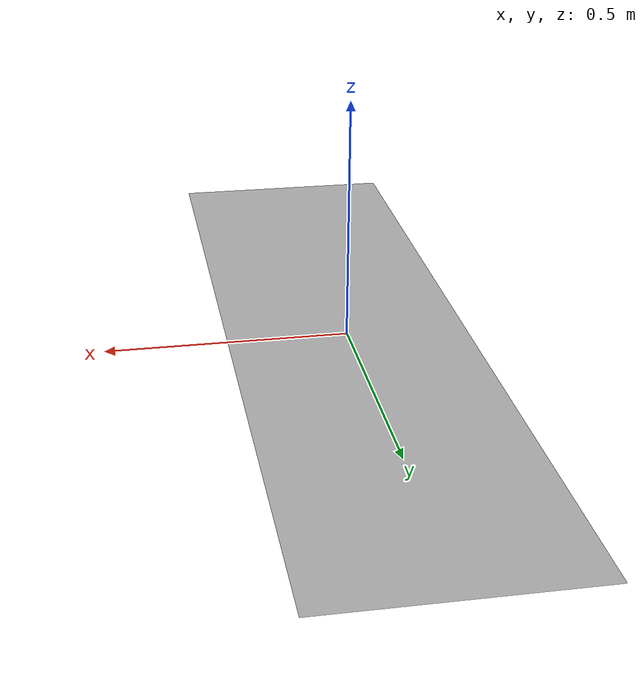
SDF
<?xml version="1.0" encoding="UTF-8"?>
<sdf version="1.4">
   <model name="start_plane">
      <static>true</static>
      <link name="link">
         <collision name="collision">
            <geometry>
               <plane>

                  <normal>0 0 1</normal>
                  <size>0.5 1.8 0.0001</size>

               </plane>
            </geometry>
            <surface>
               <friction>
                  <ode>
                     <mu>100</mu>
                     <mu2>50</mu2>
                  </ode>
               </friction>
            </surface>
         </collision>
         <visual name="visual">

            <cast_shadows>false</cast_shadows>
            <geometry>
               <plane>
                  <normal>0 0 1</normal>
                  <size>0.5 1.8 0.0001</size>
               </plane>

            </geometry>
            <material>
               <script>
                  <uri>model://start_plane/materials/scripts</uri>
                  <uri>model://start_plane/materials/textures/</uri>
                  <name>StartPlane/Image</name>
               </script>
            </material>
         </visual>
      </link>
   </model>
</sdf>
